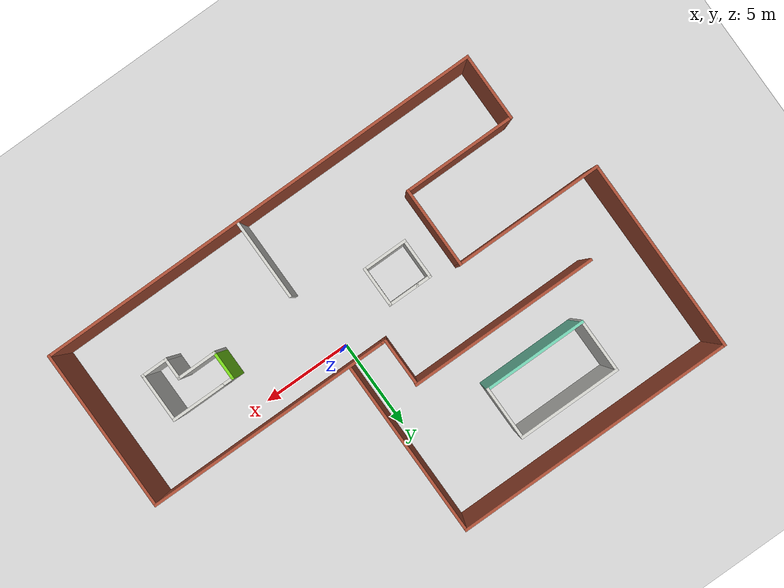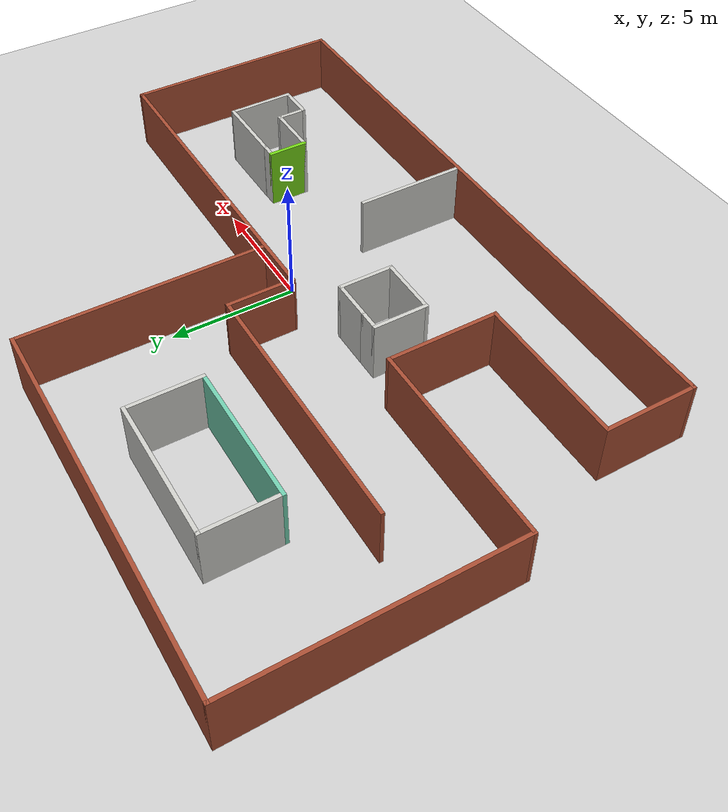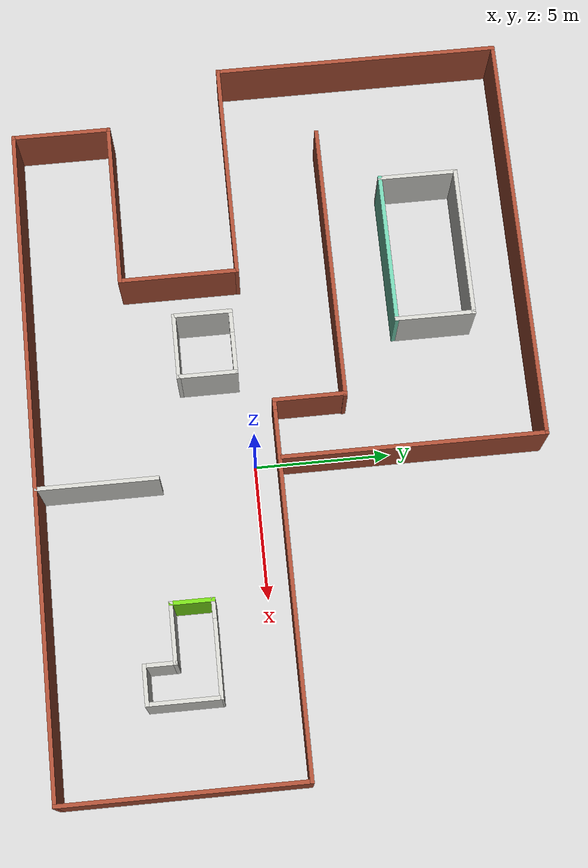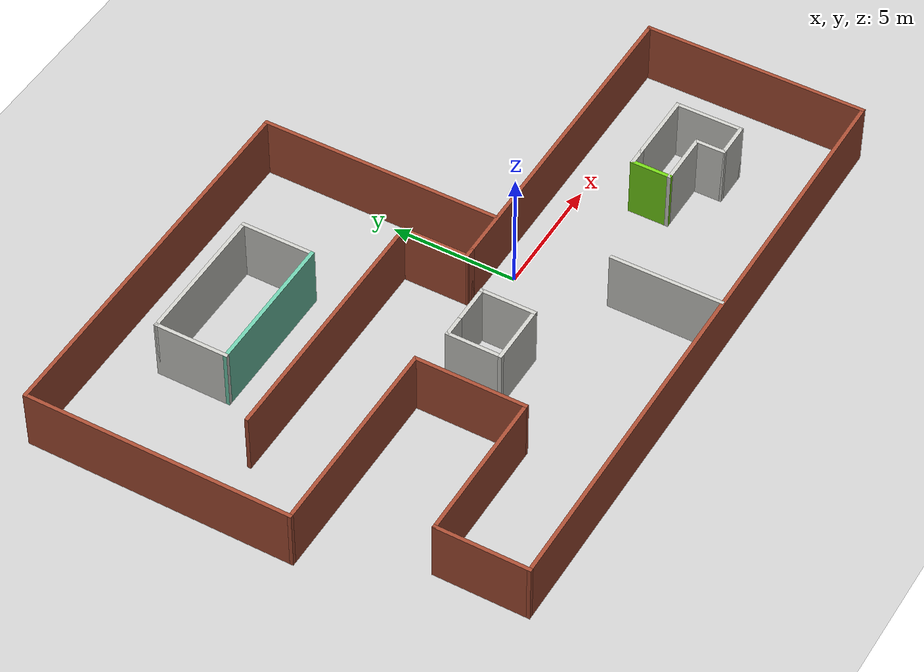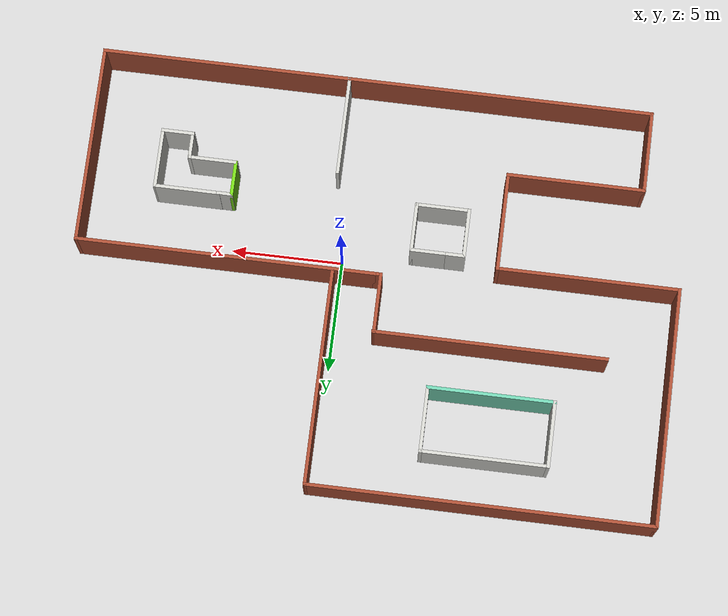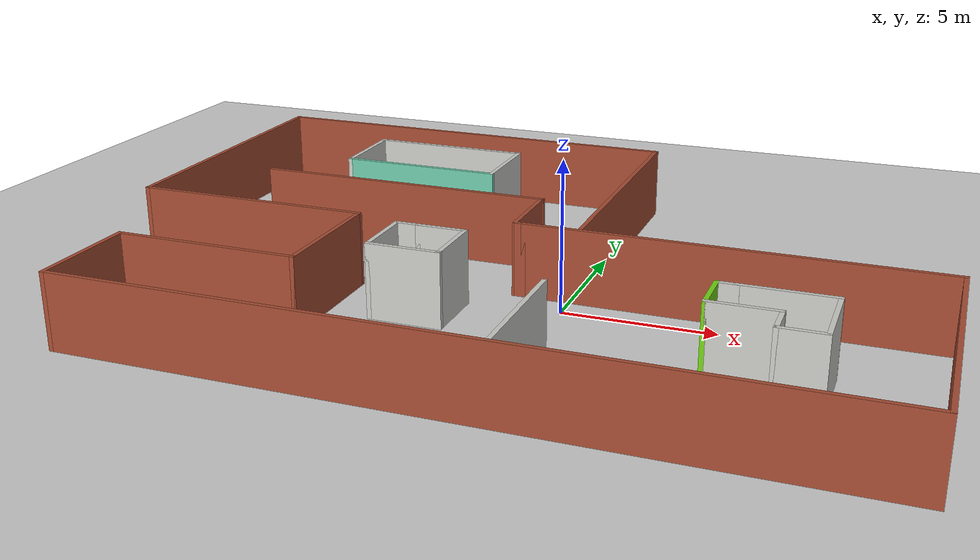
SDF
<sdf version="1.6">
 <world name="default">
  <light name="sun" type="directional">
   <pose>0 0 10 0 -0 0</pose>
   <diffuse>0.8 0.8 0.8 1</diffuse>
   <specular>0.2 0.2 0.2 1</specular>
   <attenuation>
    <range>1000</range>
    <constant>0.9</constant>
    <linear>0.01</linear>
    <quadratic>0.001</quadratic>
   </attenuation>
   <direction>-0.5 0.1 -0.9</direction>
  </light>
  <model name="ground_plane">
   <static>1</static>
   <link name="link">
    <collision name="collision">
     <geometry><plane><normal>0 0 1</normal><size>100 100</size></plane></geometry>
     <surface><friction><ode><mu>100</mu><mu2>50</mu2></ode></friction></surface>
    </collision>
    <visual name="visual">
     <cast_shadows>0</cast_shadows>
     <geometry><plane><normal>0 0 1</normal><size>100 100</size></plane></geometry>
     <material>
      <script><uri>file://media/materials/scripts/gazebo.material</uri><name>Gazebo/Grey</name></script>
     </material>
    </visual>
   </link>
  </model>
  <gravity>0 0 -9.8</gravity>
  <magnetic_field>6e-06 2.3e-05 -4.2e-05</magnetic_field>
  <atmosphere type="adiabatic"/>
  <physics name="default_physics" default="0" type="ode">
   <max_step_size>0.001</max_step_size>
   <real_time_factor>1</real_time_factor>
   <real_time_update_rate>1000</real_time_update_rate>
  </physics>
  <scene><ambient>0.4 0.4 0.4 1</ambient><background>0.7 0.7 0.7 1</background><shadows>1</shadows></scene>
  <audio><device>default</device></audio>
  <spherical_coordinates>
   <surface_model>EARTH_WGS84</surface_model>
   <latitude_deg>0</latitude_deg>
   <longitude_deg>0</longitude_deg>
   <elevation>0</elevation>
   <heading_deg>0</heading_deg>
  </spherical_coordinates>
  <model name="loop_closure_building">
   <pose>-1.64131 1.30165 0 0 -0 0</pose>
   <link name="Wall_0">
    <collision name="Wall_0_Collision">
     <geometry><box><size>13.5 0.15 2.5</size></box></geometry>
     <pose>0 0 1.25 0 -0 0</pose>
    </collision>
    <visual name="Wall_0_Visual">
     <pose>0 0 1.25 0 -0 0</pose>
     <geometry><box><size>13.5 0.15 2.5</size></box></geometry>
     <material>
      <script><uri>file://media/materials/scripts/gazebo.material</uri><name>Gazebo/Bricks</name></script>
      <ambient>0.996078 0.47451 0.0196078 1</ambient>
     </material>
     <meta><layer>0</layer></meta>
    </visual>
    <pose>6.75 -0.425 0 0 -0 0</pose>
   </link>
   <link name="Wall_1">
    <collision name="Wall_1_Collision">
     <geometry><box><size>9 0.15 2.5</size></box></geometry>
     <pose>0 0 1.25 0 -0 0</pose>
    </collision>
    <visual name="Wall_1_Visual">
     <pose>0 0 1.25 0 -0 0</pose>
     <geometry><box><size>9 0.15 2.5</size></box></geometry>
     <material>
      <script><uri>file://media/materials/scripts/gazebo.material</uri><name>Gazebo/Bricks</name></script>
      <ambient>0.435294 0.796078 0.67451 1</ambient>
     </material>
     <meta><layer>0</layer></meta>
    </visual>
    <pose>13.425 -4.85 0 0 -0 -1.5708</pose>
   </link>
   <link name="Wall_10">
    <collision name="Wall_10_Collision">
     <geometry><box><size>3 0.15 2.5</size></box></geometry>
     <pose>0 0 1.25 0 -0 0</pose>
    </collision>
    <visual name="Wall_10_Visual">
     <pose>0 0 1.25 0 -0 0</pose>
     <geometry><box><size>3 0.15 2.5</size></box></geometry>
     <material>
      <script><uri>file://media/materials/scripts/gazebo.material</uri><name>Gazebo/CeilingTiled</name></script>
      <ambient>0.45098 0.823529 0.0862745 1</ambient>
     </material>
     <meta><layer>0</layer></meta>
    </visual>
    <pose>8.86279 -3.26203 0 0 -0 -0.002307</pose>
   </link>
   <link name="Wall_11">
    <collision name="Wall_11_Collision">
     <geometry><box><size>2.75 0.15 2.5</size></box></geometry>
     <pose>0 0 1.25 0 -0 0</pose>
    </collision>
    <visual name="Wall_11_Visual">
     <pose>0 0 1.25 0 -0 0</pose>
     <geometry><box><size>2.75 0.15 2.5</size></box></geometry>
     <material>
      <script><uri>file://media/materials/scripts/gazebo.material</uri><name>Gazebo/CeilingTiled</name></script>
      <ambient>0.45098 0.823529 0.0862745 1</ambient>
     </material>
     <meta><layer>0</layer></meta>
    </visual>
    <pose>10.2878 -4.56532 0 0 -0 -1.5708</pose>
   </link>
   <link name="Wall_12">
    <collision name="Wall_12_Collision">
     <geometry><box><size>1.5 0.15 2.5</size></box></geometry>
     <pose>0 0 1.25 0 -0 0</pose>
    </collision>
    <visual name="Wall_12_Visual">
     <pose>0 0 1.25 0 -0 0</pose>
     <geometry><box><size>1.5 0.15 2.5</size></box></geometry>
     <material>
      <script><uri>file://media/materials/scripts/gazebo.material</uri><name>Gazebo/CeilingTiled</name></script>
      <ambient>0.45098 0.823529 0.0862745 1</ambient>
     </material>
     <meta><layer>0</layer></meta>
    </visual>
    <pose>9.61279 -5.86532 0 0 -0 3.14159</pose>
   </link>
   <link name="Wall_13">
    <collision name="Wall_13_Collision">
     <geometry><box><size>1.25 0.15 2.5</size></box></geometry>
     <pose>0 0 1.25 0 -0 0</pose>
    </collision>
    <visual name="Wall_13_Visual">
     <pose>0 0 1.25 0 -0 0</pose>
     <geometry><box><size>1.25 0.15 2.5</size></box></geometry>
     <material>
      <script><uri>file://media/materials/scripts/gazebo.material</uri><name>Gazebo/CeilingTiled</name></script>
      <ambient>0.45098 0.823529 0.0862745 1</ambient>
     </material>
     <meta><layer>0</layer></meta>
    </visual>
    <pose>8.93779 -5.31532 0 0 -0 1.5708</pose>
   </link>
   <link name="Wall_14">
    <collision name="Wall_14_Collision">
     <geometry><box><size>2.25 0.15 2.5</size></box></geometry>
     <pose>0 0 1.25 0 -0 0</pose>
    </collision>
    <visual name="Wall_14_Visual">
     <pose>0 0 1.25 0 -0 0</pose>
     <geometry><box><size>2.25 0.15 2.5</size></box></geometry>
     <material>
      <script><uri>file://media/materials/scripts/gazebo.material</uri><name>Gazebo/CeilingTiled</name></script>
      <ambient>0.45098 0.823529 0.0862745 1</ambient>
     </material>
     <meta><layer>0</layer></meta>
    </visual>
    <pose>7.88779 -4.76532 0 0 -0 3.14159</pose>
   </link>
   <link name="Wall_15">
    <collision name="Wall_15_Collision">
     <geometry><box><size>1.65 0.15 2.5</size></box></geometry>
     <pose>0 0 1.25 0 -0 0</pose>
    </collision>
    <visual name="Wall_15_Visual">
     <pose>0 0 1.25 0 -0 0</pose>
     <geometry><box><size>1.65 0.15 2.5</size></box></geometry>
     <material>
      <script><uri>file://media/materials/scripts/gazebo.material</uri><name>Gazebo/Grey</name></script>
      <ambient>0.45098 0.823529 0.0862745 1</ambient>
     </material>
     <meta><layer>0</layer></meta>
    </visual>
    <pose>6.83779 -4.01532 0 0 -0 1.5708</pose>
   </link>
   <link name="Wall_16">
    <collision name="Wall_16_Collision">
     <geometry><box><size>0.75 0.15 2.5</size></box></geometry>
     <pose>0 0 1.25 0 -0 0</pose>
    </collision>
    <visual name="Wall_16_Visual">
     <pose>0 0 1.25 0 -0 0</pose>
     <geometry><box><size>0.75 0.15 2.5</size></box></geometry>
     <material>
      <script><uri>file://media/materials/scripts/gazebo.material</uri><name>Gazebo/CeilingTiled</name></script>
      <ambient>0.45098 0.823529 0.0862745 1</ambient>
     </material>
     <meta><layer>0</layer></meta>
    </visual>
    <pose>7.13779 -3.26532 0 0 -0 0</pose>
   </link>
   <link name="Wall_18">
    <collision name="Wall_18_Collision">
     <geometry><box><size>1.75 0.15 2.5</size></box></geometry>
     <pose>0 0 1.25 0 -0 0</pose>
    </collision>
    <visual name="Wall_18_Visual">
     <pose>0 0 1.25 0 -0 0</pose>
     <geometry><box><size>1.75 0.15 2.5</size></box></geometry>
     <material>
      <script><uri>file://media/materials/scripts/gazebo.material</uri><name>Gazebo/CeilingTiled</name></script>
      <ambient>0.45098 0.823529 0.0862745 1</ambient>
     </material>
     <meta><layer>0</layer></meta>
    </visual>
    <pose>-2.22592 -1.71169 0 0 -0 0</pose>
   </link>
   <link name="Wall_19">
    <collision name="Wall_19_Collision">
     <geometry><box><size>2.25 0.15 2.5</size></box></geometry>
     <pose>0 0 1.25 0 -0 0</pose>
    </collision>
    <visual name="Wall_19_Visual">
     <pose>0 0 1.25 0 -0 0</pose>
     <geometry><box><size>2.25 0.15 2.5</size></box></geometry>
     <material>
      <script><uri>file://media/materials/scripts/gazebo.material</uri><name>Gazebo/CeilingTiled</name></script>
      <ambient>0.45098 0.823529 0.0862745 1</ambient>
     </material>
     <meta><layer>0</layer></meta>
    </visual>
    <pose>-1.42592 -2.76169 0 0 -0 -1.5708</pose>
   </link>
   <link name="Wall_2">
    <collision name="Wall_2_Collision">
     <geometry><box><size>25 0.15 2.5</size></box></geometry>
     <pose>0 0 1.25 0 -0 0</pose>
    </collision>
    <visual name="Wall_2_Visual">
     <pose>0 0 1.25 0 -0 0</pose>
     <geometry><box><size>25 0.15 2.5</size></box></geometry>
     <material>
      <script><uri>file://media/materials/scripts/gazebo.material</uri><name>Gazebo/Bricks</name></script>
      <ambient>0.435294 0.796078 0.67451 1</ambient>
     </material>
     <meta><layer>0</layer></meta>
    </visual>
    <pose>1 -9.275 0 0 -0 3.14159</pose>
   </link>
   <link name="Wall_20">
    <collision name="Wall_20_Collision">
     <geometry><box><size>2.5 0.15 2.5</size></box></geometry>
     <pose>0 0 1.25 0 -0 0</pose>
    </collision>
    <visual name="Wall_20_Visual">
     <pose>0 0 1.25 0 -0 0</pose>
     <geometry><box><size>2.5 0.15 2.5</size></box></geometry>
     <material>
      <script><uri>file://media/materials/scripts/gazebo.material</uri><name>Gazebo/CeilingTiled</name></script>
      <ambient>0.45098 0.823529 0.0862745 1</ambient>
     </material>
     <meta><layer>0</layer></meta>
    </visual>
    <pose>-2.60092 -3.81169 0 0 -0 3.14159</pose>
   </link>
   <link name="Wall_21">
    <collision name="Wall_21_Collision">
     <geometry><box><size>2.25 0.15 2.5</size></box></geometry>
     <pose>0 0 1.25 0 -0 0</pose>
    </collision>
    <visual name="Wall_21_Visual">
     <pose>0 0 1.25 0 -0 0</pose>
     <geometry><box><size>2.25 0.15 2.5</size></box></geometry>
     <material>
      <script><uri>file://media/materials/scripts/gazebo.material</uri><name>Gazebo/CeilingTiled</name></script>
      <ambient>0.45098 0.823529 0.0862745 1</ambient>
     </material>
     <meta><layer>0</layer></meta>
    </visual>
    <pose>-3.77592 -2.76169 0 0 -0 1.5708</pose>
   </link>
   <link name="Wall_22">
    <collision name="Wall_22_Collision">
     <geometry><box><size>0.9 0.15 2.5</size></box></geometry>
     <pose>0 0 1.25 0 -0 0</pose>
    </collision>
    <visual name="Wall_22_Visual">
     <pose>0 0 1.25 0 -0 0</pose>
     <geometry><box><size>0.9 0.15 2.5</size></box></geometry>
     <material>
      <script><uri>file://media/materials/scripts/gazebo.material</uri><name>Gazebo/CeilingTiled</name></script>
      <ambient>0.45098 0.823529 0.0862745 1</ambient>
     </material>
     <meta><layer>0</layer></meta>
    </visual>
    <pose>-3.40092 -1.71169 0 0 -0 0</pose>
   </link>
   <link name="Wall_25">
    <collision name="Wall_25_Collision">
     <geometry><box><size>4.5 0.15 2.5</size></box></geometry>
     <pose>0 0 1.25 0 -0 0</pose>
    </collision>
    <visual name="Wall_25_Visual">
     <pose>0 0 1.25 0 -0 0</pose>
     <geometry><box><size>4.5 0.15 2.5</size></box></geometry>
     <material>
      <script><uri>file://media/materials/scripts/gazebo.material</uri><name>Gazebo/CeilingTiled</name></script>
      <ambient>0.435294 0.796078 0.67451 1</ambient>
     </material>
     <meta><layer>0</layer></meta>
    </visual>
    <pose>2.26954 -7.05353 0 0 -0 1.5708</pose>
   </link>
   <link name="Wall_27">
    <collision name="Wall_27_Collision">
     <geometry><box><size>4.5 0.15 2.5</size></box></geometry>
     <pose>0 0 1.25 0 -0 0</pose>
    </collision>
    <visual name="Wall_27_Visual">
     <pose>0 0 1.25 0 -0 0</pose>
     <geometry><box><size>4.5 0.15 2.5</size></box></geometry>
     <material>
      <script><uri>file://media/materials/scripts/gazebo.material</uri><name>Gazebo/Bricks</name></script>
      <ambient>0.435294 0.796078 0.67451 1</ambient>
     </material>
     <meta><layer>0</layer></meta>
    </visual>
    <pose>-5.325 -3.5 0 0 -0 1.5708</pose>
   </link>
   <link name="Wall_28">
    <collision name="Wall_28_Collision">
     <geometry><box><size>8.25 0.15 2.5</size></box></geometry>
     <pose>0 0 1.25 0 -0 0</pose>
    </collision>
    <visual name="Wall_28_Visual">
     <pose>0 0 1.25 0 -0 0</pose>
     <geometry><box><size>8.25 0.15 2.5</size></box></geometry>
     <material>
      <script><uri>file://media/materials/scripts/gazebo.material</uri><name>Gazebo/Bricks</name></script>
      <ambient>0.996078 0.47451 0.0196078 1</ambient>
     </material>
     <meta><layer>0</layer></meta>
    </visual>
    <pose>-9.375 -1.325 0 0 -0 3.14159</pose>
   </link>
   <link name="Wall_29">
    <collision name="Wall_29_Collision">
     <geometry><box><size>10.75 0.15 2.5</size></box></geometry>
     <pose>0 0 1.25 0 -0 0</pose>
    </collision>
    <visual name="Wall_29_Visual">
     <pose>0 0 1.25 0 -0 0</pose>
     <geometry><box><size>10.75 0.15 2.5</size></box></geometry>
     <material>
      <script><uri>file://media/materials/scripts/gazebo.material</uri><name>Gazebo/Bricks</name></script>
      <ambient>0.996078 0.47451 0.0196078 1</ambient>
     </material>
     <meta><layer>0</layer></meta>
    </visual>
    <pose>-13.425 3.975 0 0 -0 1.5708</pose>
   </link>
   <link name="Wall_3">
    <collision name="Wall_3_Collision">
     <geometry><box><size>3.75 0.15 2.5</size></box></geometry>
     <pose>0 0 1.25 0 -0 0</pose>
    </collision>
    <visual name="Wall_3_Visual">
     <pose>0 0 1.25 0 -0 0</pose>
     <geometry><box><size>3.75 0.15 2.5</size></box></geometry>
     <material>
      <script><uri>file://media/materials/scripts/gazebo.material</uri><name>Gazebo/Bricks</name></script>
      <ambient>0.435294 0.796078 0.67451 1</ambient>
     </material>
     <meta><layer>0</layer></meta>
    </visual>
    <pose>-11.425 -7.475 0 0 -0 1.5708</pose>
   </link>
   <link name="Wall_30">
    <collision name="Wall_30_Collision">
     <geometry><box><size>15.5 0.15 2.5</size></box></geometry>
     <pose>0 0 1.25 0 -0 0</pose>
    </collision>
    <visual name="Wall_30_Visual">
     <pose>0 0 1.25 0 -0 0</pose>
     <geometry><box><size>15.5 0.15 2.5</size></box></geometry>
     <material>
      <script><uri>file://media/materials/scripts/gazebo.material</uri><name>Gazebo/Bricks</name></script>
      <ambient>0.996078 0.47451 0.0196078 1</ambient>
     </material>
     <meta><layer>0</layer></meta>
    </visual>
    <pose>-5.75 9.275 0 0 -0 0</pose>
   </link>
   <link name="Wall_31">
    <collision name="Wall_31_Collision">
     <geometry><box><size>9.75 0.15 2.5</size></box></geometry>
     <pose>0 0 1.25 0 -0 0</pose>
    </collision>
    <visual name="Wall_31_Visual">
     <pose>0 0 1.25 0 -0 0</pose>
     <geometry><box><size>9.75 0.15 2.5</size></box></geometry>
     <material>
      <script><uri>file://media/materials/scripts/gazebo.material</uri><name>Gazebo/Bricks</name></script>
      <ambient>0.996078 0.47451 0.0196078 1</ambient>
     </material>
     <meta><layer>0</layer></meta>
    </visual>
    <pose>1.925 4.475 0 0 -0 -1.5708</pose>
   </link>
   <link name="Wall_33">
    <collision name="Wall_33_Collision">
     <geometry><box><size>5.75 0.15 2.5</size></box></geometry>
     <pose>0 0 1.25 0 -0 0</pose>
    </collision>
    <visual name="Wall_33_Visual">
     <pose>0 0 1.25 0 -0 0</pose>
     <geometry><box><size>5.75 0.15 2.5</size></box></geometry>
     <material>
      <script><uri>file://media/materials/scripts/gazebo.material</uri><name>Gazebo/CeilingTiled</name></script>
      <ambient>0.435294 0.796078 0.67451 1</ambient>
     </material>
     <meta><layer>0</layer></meta>
    </visual>
    <pose>-5.68104 7.2156 0 0 -0 0</pose>
   </link>
   <link name="Wall_34">
    <collision name="Wall_34_Collision">
     <geometry><box><size>3 0.15 2.5</size></box></geometry>
     <pose>0 0 1.25 0 -0 0</pose>
    </collision>
    <visual name="Wall_34_Visual">
     <pose>0 0 1.25 0 -0 0</pose>
     <geometry><box><size>3 0.15 2.5</size></box></geometry>
     <material>
      <script><uri>file://media/materials/scripts/gazebo.material</uri><name>Gazebo/CeilingTiled</name></script>
      <ambient>0.435294 0.796078 0.67451 1</ambient>
     </material>
     <meta><layer>0</layer></meta>
    </visual>
    <pose>-2.88104 5.7906 0 0 -0 -1.5708</pose>
   </link>
   <link name="Wall_35">
    <collision name="Wall_35_Collision">
     <geometry><box><size>5.75 0.15 2.5</size></box></geometry>
     <pose>0 0 1.25 0 -0 0</pose>
    </collision>
    <visual name="Wall_35_Visual">
     <pose>0 0 1.25 0 -0 0</pose>
     <geometry><box><size>5.75 0.15 2.5</size></box></geometry>
     <material>
      <script><uri>file://media/materials/scripts/gazebo.material</uri><name>Gazebo/Grey</name></script>
      <ambient>0.435294 0.796078 0.67451 1</ambient>
     </material>
     <meta><layer>0</layer></meta>
    </visual>
    <pose>-5.68104 4.3656 0 0 -0 3.14159</pose>
   </link>
   <link name="Wall_36">
    <collision name="Wall_36_Collision">
     <geometry><box><size>3 0.15 2.5</size></box></geometry>
     <pose>0 0 1.25 0 -0 0</pose>
    </collision>
    <visual name="Wall_36_Visual">
     <pose>0 0 1.25 0 -0 0</pose>
     <geometry><box><size>3 0.15 2.5</size></box></geometry>
     <material>
      <script><uri>file://media/materials/scripts/gazebo.material</uri><name>Gazebo/CeilingTiled</name></script>
      <ambient>0.435294 0.796078 0.67451 1</ambient>
     </material>
     <meta><layer>0</layer></meta>
    </visual>
    <pose>-8.48104 5.7906 0 0 -0 1.5708</pose>
   </link>
   <link name="Wall_4">
    <collision name="Wall_4_Collision">
     <geometry><box><size>6.25 0.15 2.5</size></box></geometry>
     <pose>0 0 1.25 0 -0 0</pose>
    </collision>
    <visual name="Wall_4_Visual">
     <pose>0 0 1.25 0 -0 0</pose>
     <geometry><box><size>6.25 0.15 2.5</size></box></geometry>
     <material>
      <script><uri>file://media/materials/scripts/gazebo.material</uri><name>Gazebo/Bricks</name></script>
      <ambient>0.435294 0.796078 0.67451 1</ambient>
     </material>
     <meta><layer>0</layer></meta>
    </visual>
    <pose>-8.375 -5.675 0 0 -0 0</pose>
   </link>
   <link name="Wall_6">
    <collision name="Wall_6_Collision">
     <geometry><box><size>10.5 0.15 2.5</size></box></geometry>
     <pose>0 0 1.25 0 -0 0</pose>
    </collision>
    <visual name="Wall_6_Visual">
     <pose>0 0 1.25 0 -0 0</pose>
     <geometry><box><size>10.5 0.15 2.5</size></box></geometry>
     <material>
      <script><uri>file://media/materials/scripts/gazebo.material</uri><name>Gazebo/Bricks</name></script>
      <ambient>0.996078 0.47451 0.0196078 1</ambient>
     </material>
     <meta><layer>0</layer></meta>
    </visual>
    <pose>-5.37709 2.175 0 0 -0 0</pose>
   </link>
   <link name="Wall_7">
    <collision name="Wall_7_Collision">
     <geometry><box><size>2.75001 0.15 2.5</size></box></geometry>
     <pose>0 0 1.25 0 -0 0</pose>
    </collision>
    <visual name="Wall_7_Visual">
     <pose>0 0 1.25 0 -0 0</pose>
     <geometry><box><size>2.75001 0.15 2.5</size></box></geometry>
     <material>
      <script><uri>file://media/materials/scripts/gazebo.material</uri><name>Gazebo/Bricks</name></script>
      <ambient>0.996078 0.47451 0.0196078 1</ambient>
     </material>
     <meta><layer>0</layer></meta>
    </visual>
    <pose>-0.228839 0.875 0 0 -0 -1.56784</pose>
   </link>
   <link name="Wall_8">
    <collision name="Wall_8_Collision">
     <geometry><box><size>0.45 0.15 2.5</size></box></geometry>
     <pose>0 0 1.25 0 -0 0</pose>
    </collision>
    <visual name="Wall_8_Visual">
     <pose>0 0 1.25 0 -0 0</pose>
     <geometry><box><size>0.45 0.15 2.5</size></box></geometry>
     <material>
      <script><uri>file://media/materials/scripts/gazebo.material</uri><name>Gazebo/Bricks</name></script>
      <ambient>0.996078 0.47451 0.0196078 1</ambient>
     </material>
     <meta><layer>0</layer></meta>
    </visual>
    <pose>-0.075 -0.425 0 0 -0 0</pose>
   </link>
   <static>1</static>
  </model>
 </world>
</sdf>
